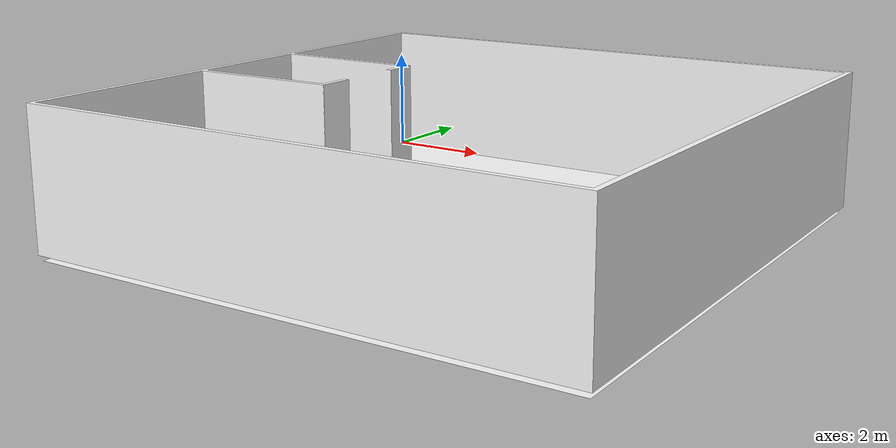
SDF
<?xml version='1.0' encoding='utf-8'?>
<sdf version="1.7">
  <model name="goat_goat_hotel">
    <static>true</static>
    <link name="floor_1">
      <visual name="visual">
        <geometry>
          <mesh>
            <uri>model://goat_goat_hotel/meshes/floor_1.obj</uri>
          </mesh>
        </geometry>
        <material>
          <diffuse>1.0 1.0 1.0</diffuse>
          <specular>0.1 0.1 0.1</specular>
          <pbr>
            <metal>
              <metalness>0.0</metalness>
              <albedo_map>model://goat_goat_hotel/meshes/blue_linoleum.png</albedo_map>
            </metal>
          </pbr>
          <script>
            <uri>model://goat_goat_hotel/meshes/</uri>
            <name>floor_1_Diffuse</name>
          </script>
        </material>
      </visual>
      <collision name="collision">
        <geometry>
          <mesh>
            <uri>model://goat_goat_hotel/meshes/floor_1.obj</uri>
          </mesh>
        </geometry>
        <surface>
          <contact>
            <collide_bitmask>0x01</collide_bitmask>
          </contact>
        </surface>
      </collision>
    </link>
    <link name="wall_1">
      <visual name="wall_1">
        <geometry>
          <mesh>
            <uri>model://goat_goat_hotel/meshes/wall_1.obj</uri>
          </mesh>
        </geometry>
        <transparency>0.0</transparency>
        <material>
          <diffuse>1.0 1.0 1.0</diffuse>
          <specular>0.1 0.1 0.1</specular>
          <pbr>
            <metal>
              <metalness>0.0</metalness>
              <albedo_map>model://goat_goat_hotel/meshes/default.png</albedo_map>
            </metal>
          </pbr>
          <script>
            <uri>model://goat_goat_hotel/meshes/</uri>
            <name>wall_1_Diffuse</name>
          </script>
        </material>
      </visual>
      <collision name="collision">
        <geometry>
          <mesh>
            <uri>model://goat_goat_hotel/meshes/wall_1.obj</uri>
          </mesh>
        </geometry>
        <surface>
          <contact>
            <collide_bitmask>0x01</collide_bitmask>
          </contact>
        </surface>
      </collision>
      <pose>-0.01776438051442996 -10.039431321957668 0 0 0 0</pose>
    </link>
  </model>
</sdf>
